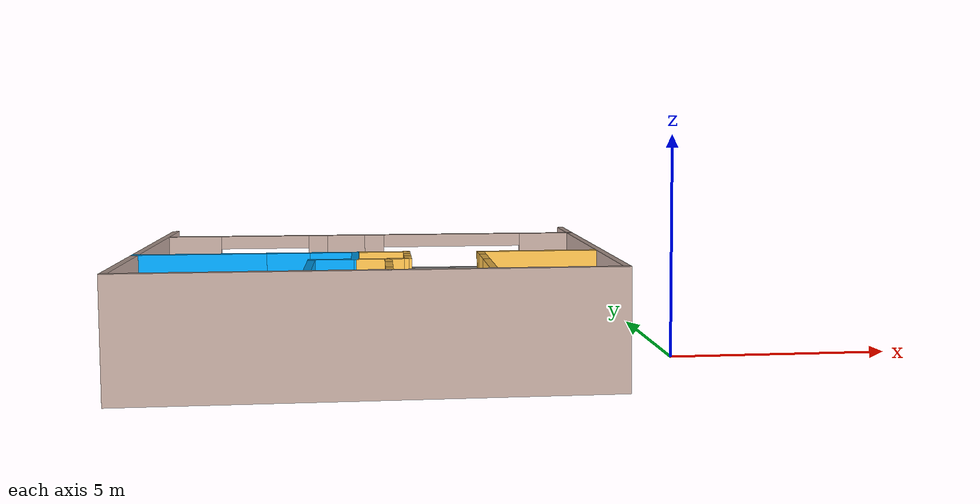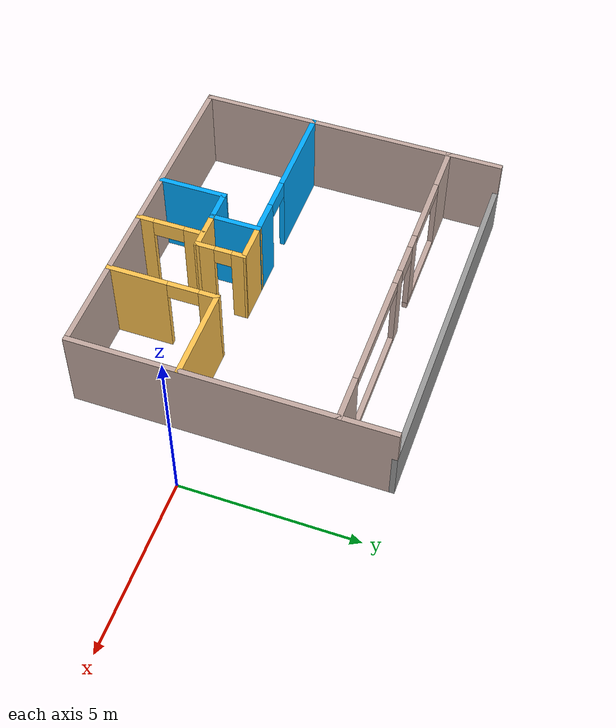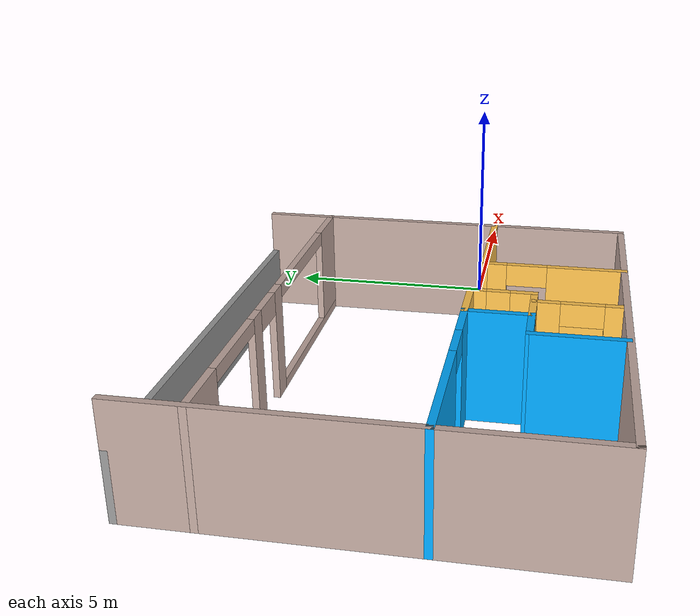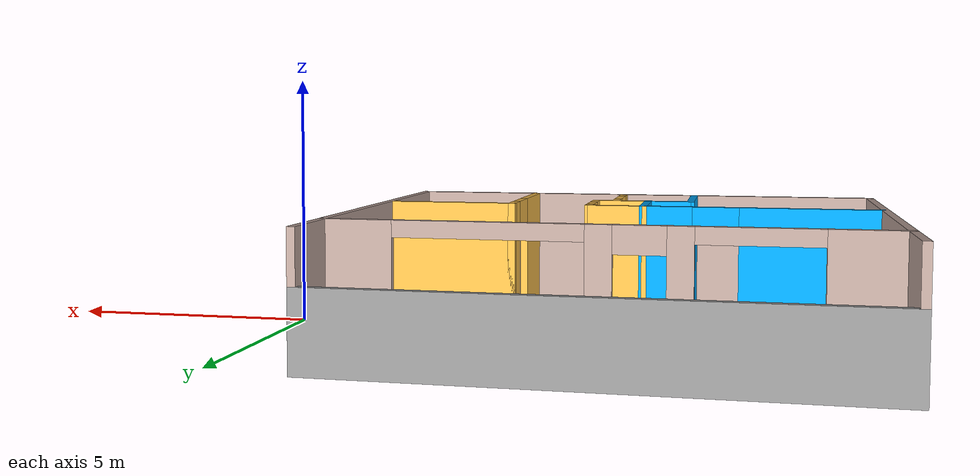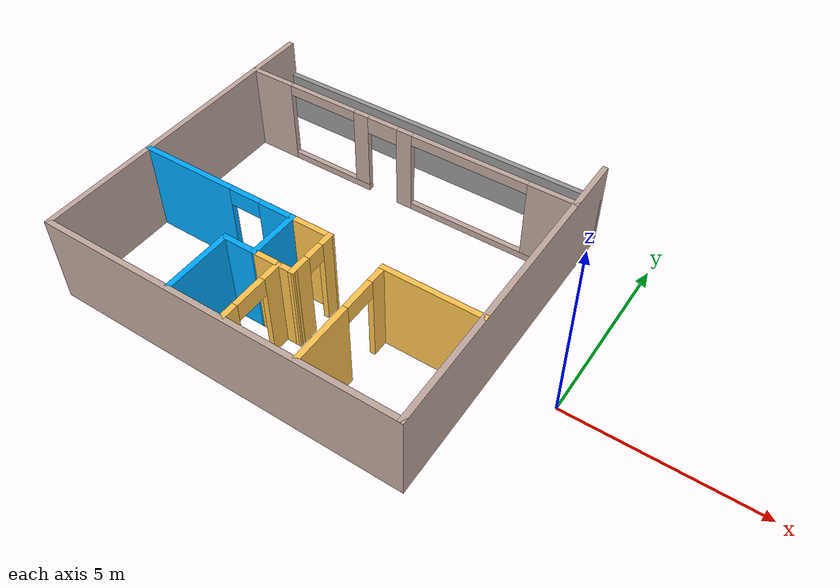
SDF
<?xml version='1.0'?>
<sdf version='1.6'>
  <model name='mybuilding'>
    <pose frame=''>-6.65297 0.817758 0 0 -0 0</pose>
    <link name='Wall_44'>
      <collision name='Wall_44_Collision'>
        <geometry>
          <box>
            <size>10 0.15 1.5</size>
          </box>
        </geometry>
        <pose frame=''>0 0 0.75 0 -0 0</pose>
      </collision>
      <visual name='Wall_44_Visual'>
        <pose frame=''>0 0 0.75 0 -0 0</pose>
        <geometry>
          <box>
            <size>10 0.15 1.5</size>
          </box>
        </geometry>
        <material>
          <script>
            <uri>file://media/materials/scripts/gazebo.material</uri>
            <name>Gazebo/Grey</name>
          </script>
          <ambient>1 1 1 1</ambient>
        </material>
        <meta>
          <layer>0</layer>
        </meta>
      </visual>
      <pose frame=''>-2.6e-05 4.42524 0 0 -0 0</pose>
    </link>
    <link name='Wall_45'>
      <collision name='Wall_45_Collision'>
        <geometry>
          <box>
            <size>9 0.15 2.5</size>
          </box>
        </geometry>
        <pose frame=''>0 0 1.25 0 -0 0</pose>
      </collision>
      <visual name='Wall_45_Visual'>
        <pose frame=''>0 0 1.25 0 -0 0</pose>
        <geometry>
          <box>
            <size>9 0.15 2.5</size>
          </box>
        </geometry>
        <material>
          <script>
            <uri>file://media/materials/scripts/gazebo.material</uri>
            <name>Gazebo/Grey</name>
          </script>
          <ambient>0.760784 0.662745 0.627451 1</ambient>
        </material>
        <meta>
          <layer>0</layer>
        </meta>
      </visual>
      <pose frame=''>4.925 0 0 0 0 -1.57079</pose>
    </link>
    <link name='Wall_47'>
      <collision name='Wall_47_Collision'>
        <geometry>
          <box>
            <size>10 0.15 2.5</size>
          </box>
        </geometry>
        <pose frame=''>0 0 1.25 0 -0 0</pose>
      </collision>
      <visual name='Wall_47_Visual'>
        <pose frame=''>0 0 1.25 0 -0 0</pose>
        <geometry>
          <box>
            <size>10 0.15 2.5</size>
          </box>
        </geometry>
        <material>
          <script>
            <uri>file://media/materials/scripts/gazebo.material</uri>
            <name>Gazebo/Grey</name>
          </script>
          <ambient>0.760784 0.662745 0.627451 1</ambient>
        </material>
        <meta>
          <layer>0</layer>
        </meta>
      </visual>
      <pose frame=''>2.5e-05 -4.42524 0 0 -0 3.14159</pose>
    </link>
    <link name='Wall_48'>
      <collision name='Wall_48_Collision'>
        <geometry>
          <box>
            <size>9 0.15 2.5</size>
          </box>
        </geometry>
        <pose frame=''>0 0 1.25 0 -0 0</pose>
      </collision>
      <visual name='Wall_48_Visual'>
        <pose frame=''>0 0 1.25 0 -0 0</pose>
        <geometry>
          <box>
            <size>9 0.15 2.5</size>
          </box>
        </geometry>
        <material>
          <script>
            <uri>file://media/materials/scripts/gazebo.material</uri>
            <name>Gazebo/Grey</name>
          </script>
          <ambient>0.760784 0.662745 0.627451 1</ambient>
        </material>
        <meta>
          <layer>0</layer>
        </meta>
      </visual>
      <pose frame=''>-4.925 0 0 0 -0 1.5708</pose>
    </link>
    <link name='Wall_50'>
      <pose frame=''>-2.6e-05 2.92324 0 0 -0 0</pose>
      <visual name='Wall_50_Visual_0'>
        <pose frame=''>-4.30924 0 1.25 0 -0 0</pose>
        <geometry>
          <box>
            <size>1.38152 0.15 2.5</size>
          </box>
        </geometry>
        <material>
          <script>
            <uri>file://media/materials/scripts/gazebo.material</uri>
            <name>Gazebo/Grey</name>
          </script>
          <ambient>0.760784 0.662745 0.627451 1</ambient>
        </material>
        <meta>
          <layer>0</layer>
        </meta>
      </visual>
      <collision name='Wall_50_Collision_0'>
        <geometry>
          <box>
            <size>1.38152 0.15 2.5</size>
          </box>
        </geometry>
        <pose frame=''>-4.30924 0 1.25 0 -0 0</pose>
      </collision>
      <visual name='Wall_50_Visual_1'>
        <pose frame=''>0.057238 0 1.25 0 -0 0</pose>
        <geometry>
          <box>
            <size>0.463911 0.15 2.5</size>
          </box>
        </geometry>
        <material>
          <script>
            <uri>file://media/materials/scripts/gazebo.material</uri>
            <name>Gazebo/Grey</name>
          </script>
          <ambient>0.760784 0.662745 0.627451 1</ambient>
        </material>
        <meta>
          <layer>0</layer>
        </meta>
      </visual>
      <collision name='Wall_50_Collision_1'>
        <geometry>
          <box>
            <size>0.463911 0.15 2.5</size>
          </box>
        </geometry>
        <pose frame=''>0.057238 0 1.25 0 -0 0</pose>
      </collision>
      <visual name='Wall_50_Visual_2'>
        <pose frame=''>-2.3466 0 0.1 0 -0 0</pose>
        <geometry>
          <box>
            <size>2.54376 0.15 0.2</size>
          </box>
        </geometry>
        <material>
          <script>
            <uri>file://media/materials/scripts/gazebo.material</uri>
            <name>Gazebo/Grey</name>
          </script>
          <ambient>0.760784 0.662745 0.627451 1</ambient>
        </material>
        <meta>
          <layer>0</layer>
        </meta>
      </visual>
      <collision name='Wall_50_Collision_2'>
        <geometry>
          <box>
            <size>2.54376 0.15 0.2</size>
          </box>
        </geometry>
        <pose frame=''>-2.3466 0 0.1 0 -0 0</pose>
      </collision>
      <visual name='Wall_50_Visual_3'>
        <pose frame=''>2.6446 0 0.1 0 -0 0</pose>
        <geometry>
          <box>
            <size>4.71081 0.15 0.2</size>
          </box>
        </geometry>
        <material>
          <script>
            <uri>file://media/materials/scripts/gazebo.material</uri>
            <name>Gazebo/Grey</name>
          </script>
          <ambient>0.760784 0.662745 0.627451 1</ambient>
        </material>
        <meta>
          <layer>0</layer>
        </meta>
      </visual>
      <collision name='Wall_50_Collision_3'>
        <geometry>
          <box>
            <size>4.71081 0.15 0.2</size>
          </box>
        </geometry>
        <pose frame=''>2.6446 0 0.1 0 -0 0</pose>
      </collision>
      <visual name='Wall_50_Visual_4'>
        <pose frame=''>-1.3006 0 1.35 0 -0 0</pose>
        <geometry>
          <box>
            <size>0.451764 0.15 2.3</size>
          </box>
        </geometry>
        <material>
          <script>
            <uri>file://media/materials/scripts/gazebo.material</uri>
            <name>Gazebo/Grey</name>
          </script>
          <ambient>0.760784 0.662745 0.627451 1</ambient>
        </material>
        <meta>
          <layer>0</layer>
        </meta>
      </visual>
      <collision name='Wall_50_Collision_4'>
        <geometry>
          <box>
            <size>0.451764 0.15 2.3</size>
          </box>
        </geometry>
        <pose frame=''>-1.3006 0 1.35 0 -0 0</pose>
      </collision>
      <visual name='Wall_50_Visual_5'>
        <pose frame=''>-1.3006 0 1.35 0 -0 0</pose>
        <geometry>
          <box>
            <size>0.451764 0.15 2.3</size>
          </box>
        </geometry>
        <material>
          <script>
            <uri>file://media/materials/scripts/gazebo.material</uri>
            <name>Gazebo/Grey</name>
          </script>
          <ambient>0.760784 0.662745 0.627451 1</ambient>
        </material>
        <meta>
          <layer>0</layer>
        </meta>
      </visual>
      <collision name='Wall_50_Collision_5'>
        <geometry>
          <box>
            <size>0.451764 0.15 2.3</size>
          </box>
        </geometry>
        <pose frame=''>-1.3006 0 1.35 0 -0 0</pose>
      </collision>
      <visual name='Wall_50_Visual_6'>
        <pose frame=''>4.3216 0 1.35 0 -0 0</pose>
        <geometry>
          <box>
            <size>1.35681 0.15 2.3</size>
          </box>
        </geometry>
        <material>
          <script>
            <uri>file://media/materials/scripts/gazebo.material</uri>
            <name>Gazebo/Grey</name>
          </script>
          <ambient>0.760784 0.662745 0.627451 1</ambient>
        </material>
        <meta>
          <layer>0</layer>
        </meta>
      </visual>
      <collision name='Wall_50_Collision_6'>
        <geometry>
          <box>
            <size>1.35681 0.15 2.3</size>
          </box>
        </geometry>
        <pose frame=''>4.3216 0 1.35 0 -0 0</pose>
      </collision>
      <visual name='Wall_50_Visual_7'>
        <pose frame=''>-0.624718 0 2.25 0 -0 0</pose>
        <geometry>
          <box>
            <size>0.9 0.15 0.5</size>
          </box>
        </geometry>
        <material>
          <script>
            <uri>file://media/materials/scripts/gazebo.material</uri>
            <name>Gazebo/Grey</name>
          </script>
          <ambient>0.760784 0.662745 0.627451 1</ambient>
        </material>
        <meta>
          <layer>0</layer>
        </meta>
      </visual>
      <collision name='Wall_50_Collision_7'>
        <geometry>
          <box>
            <size>0.9 0.15 0.5</size>
          </box>
        </geometry>
        <pose frame=''>-0.624718 0 2.25 0 -0 0</pose>
      </collision>
      <visual name='Wall_50_Visual_8'>
        <pose frame=''>-0.624718 0 2.25 0 -0 0</pose>
        <geometry>
          <box>
            <size>0.9 0.15 0.5</size>
          </box>
        </geometry>
        <material>
          <script>
            <uri>file://media/materials/scripts/gazebo.material</uri>
            <name>Gazebo/Grey</name>
          </script>
          <ambient>0.760784 0.662745 0.627451 1</ambient>
        </material>
        <meta>
          <layer>0</layer>
        </meta>
      </visual>
      <collision name='Wall_50_Collision_8'>
        <geometry>
          <box>
            <size>0.9 0.15 0.5</size>
          </box>
        </geometry>
        <pose frame=''>-0.624718 0 2.25 0 -0 0</pose>
      </collision>
      <visual name='Wall_50_Visual_9'>
        <pose frame=''>-2.57248 0 2.35 0 -0 0</pose>
        <geometry>
          <box>
            <size>2.09199 0.15 0.3</size>
          </box>
        </geometry>
        <material>
          <script>
            <uri>file://media/materials/scripts/gazebo.material</uri>
            <name>Gazebo/Grey</name>
          </script>
          <ambient>0.760784 0.662745 0.627451 1</ambient>
        </material>
        <meta>
          <layer>0</layer>
        </meta>
      </visual>
      <collision name='Wall_50_Collision_9'>
        <geometry>
          <box>
            <size>2.09199 0.15 0.3</size>
          </box>
        </geometry>
        <pose frame=''>-2.57248 0 2.35 0 -0 0</pose>
      </collision>
      <visual name='Wall_50_Visual_10'>
        <pose frame=''>1.96619 0 2.35 0 -0 0</pose>
        <geometry>
          <box>
            <size>3.354 0.15 0.3</size>
          </box>
        </geometry>
        <material>
          <script>
            <uri>file://media/materials/scripts/gazebo.material</uri>
            <name>Gazebo/Grey</name>
          </script>
          <ambient>0.760784 0.662745 0.627451 1</ambient>
        </material>
        <meta>
          <layer>0</layer>
        </meta>
      </visual>
      <collision name='Wall_50_Collision_10'>
        <geometry>
          <box>
            <size>3.354 0.15 0.3</size>
          </box>
        </geometry>
        <pose frame=''>1.96619 0 2.35 0 -0 0</pose>
      </collision>
    </link>
    <link name='Wall_55'>
      <collision name='Wall_55_Collision'>
        <geometry>
          <box>
            <size>2 0.15 2.5</size>
          </box>
        </geometry>
        <pose frame=''>0 0 1.25 0 -0 0</pose>
      </collision>
      <visual name='Wall_55_Visual'>
        <pose frame=''>0 0 1.25 0 -0 0</pose>
        <geometry>
          <box>
            <size>2 0.15 2.5</size>
          </box>
        </geometry>
        <material>
          <script>
            <uri>file://media/materials/scripts/gazebo.material</uri>
            <name>Gazebo/Grey</name>
          </script>
          <ambient>0 0.666667 1 1</ambient>
        </material>
        <meta>
          <layer>0</layer>
        </meta>
      </visual>
      <pose frame=''>-1.21288 -3.45603 0 0 0 -1.5708</pose>
    </link>
    <link name='Wall_57'>
      <collision name='Wall_57_Collision'>
        <geometry>
          <box>
            <size>1.01585 0.15 2.5</size>
          </box>
        </geometry>
        <pose frame=''>0 0 1.25 0 -0 0</pose>
      </collision>
      <visual name='Wall_57_Visual'>
        <pose frame=''>0 0 1.25 0 -0 0</pose>
        <geometry>
          <box>
            <size>1.01585 0.15 2.5</size>
          </box>
        </geometry>
        <material>
          <script>
            <uri>file://media/materials/scripts/gazebo.material</uri>
            <name>Gazebo/Grey</name>
          </script>
          <ambient>0 0.666667 1 1</ambient>
        </material>
        <meta>
          <layer>0</layer>
        </meta>
      </visual>
      <pose frame=''>-0.779952 -2.53089 0 0 -0 0.000313</pose>
    </link>
    <link name='Wall_58'>
      <collision name='Wall_58_Collision'>
        <geometry>
          <box>
            <size>1.5 0.15 2.5</size>
          </box>
        </geometry>
        <pose frame=''>0 0 1.25 0 -0 0</pose>
      </collision>
      <visual name='Wall_58_Visual'>
        <pose frame=''>0 0 1.25 0 -0 0</pose>
        <geometry>
          <box>
            <size>1.5 0.15 2.5</size>
          </box>
        </geometry>
        <material>
          <script>
            <uri>file://media/materials/scripts/gazebo.material</uri>
            <name>Gazebo/Grey</name>
          </script>
          <ambient>0 0.666667 1 1</ambient>
        </material>
        <meta>
          <layer>0</layer>
        </meta>
      </visual>
      <pose frame=''>-0.347026 -1.85576 0 0 -0 1.5708</pose>
    </link>
    <link name='Wall_59'>
      <pose frame=''>-2.63603 -1.18076 0 0 -0 3.14159</pose>
      <visual name='Wall_59_Visual_0'>
        <pose frame=''>-1.84719 0 1.25 0 -0 0</pose>
        <geometry>
          <box>
            <size>1.03362 0.15 2.5</size>
          </box>
        </geometry>
        <material>
          <script>
            <uri>file://media/materials/scripts/gazebo.material</uri>
            <name>Gazebo/Grey</name>
          </script>
          <ambient>0 0.666667 1 1</ambient>
        </material>
        <meta>
          <layer>0</layer>
        </meta>
      </visual>
      <collision name='Wall_59_Collision_0'>
        <geometry>
          <box>
            <size>1.03362 0.15 2.5</size>
          </box>
        </geometry>
        <pose frame=''>-1.84719 0 1.25 0 -0 0</pose>
      </collision>
      <visual name='Wall_59_Visual_1'>
        <pose frame=''>0.966808 0 1.25 0 -0 0</pose>
        <geometry>
          <box>
            <size>2.79438 0.15 2.5</size>
          </box>
        </geometry>
        <material>
          <script>
            <uri>file://media/materials/scripts/gazebo.material</uri>
            <name>Gazebo/Grey</name>
          </script>
          <ambient>0 0.666667 1 1</ambient>
        </material>
        <meta>
          <layer>0</layer>
        </meta>
      </visual>
      <collision name='Wall_59_Collision_1'>
        <geometry>
          <box>
            <size>2.79438 0.15 2.5</size>
          </box>
        </geometry>
        <pose frame=''>0.966808 0 1.25 0 -0 0</pose>
      </collision>
      <visual name='Wall_59_Visual_2'>
        <pose frame=''>-0.880384 0 2.25 0 -0 0</pose>
        <geometry>
          <box>
            <size>0.9 0.15 0.5</size>
          </box>
        </geometry>
        <material>
          <script>
            <uri>file://media/materials/scripts/gazebo.material</uri>
            <name>Gazebo/Grey</name>
          </script>
          <ambient>0 0.666667 1 1</ambient>
        </material>
        <meta>
          <layer>0</layer>
        </meta>
      </visual>
      <collision name='Wall_59_Collision_2'>
        <geometry>
          <box>
            <size>0.9 0.15 0.5</size>
          </box>
        </geometry>
        <pose frame=''>-0.880384 0 2.25 0 -0 0</pose>
      </collision>
    </link>
    <link name='Wall_61'>
      <collision name='Wall_61_Collision'>
        <geometry>
          <box>
            <size>1.23415 0.15 2.5</size>
          </box>
        </geometry>
        <pose frame=''>0 0 1.25 0 -0 0</pose>
      </collision>
      <visual name='Wall_61_Visual'>
        <pose frame=''>0 0 1.25 0 -0 0</pose>
        <geometry>
          <box>
            <size>1.23415 0.15 2.5</size>
          </box>
        </geometry>
        <material>
          <script>
            <uri>file://media/materials/scripts/gazebo.material</uri>
            <name>Gazebo/Grey</name>
          </script>
          <ambient>1 0.764706 0.305882 1</ambient>
        </material>
        <meta>
          <layer>0</layer>
        </meta>
      </visual>
      <pose frame=''>0.195047 -1.18089 0 0 0 -0.00025</pose>
    </link>
    <link name='Wall_62'>
      <pose frame=''>0.737121 -1.85603 0 0 0 -1.5708</pose>
      <visual name='Wall_62_Visual_0'>
        <pose frame=''>-0.541813 0 1.25 0 -0 0</pose>
        <geometry>
          <box>
            <size>0.416374 0.15 2.5</size>
          </box>
        </geometry>
        <material>
          <script>
            <uri>file://media/materials/scripts/gazebo.material</uri>
            <name>Gazebo/Grey</name>
          </script>
          <ambient>1 0.764706 0.305882 1</ambient>
        </material>
        <meta>
          <layer>0</layer>
        </meta>
      </visual>
      <collision name='Wall_62_Collision_0'>
        <geometry>
          <box>
            <size>0.416374 0.15 2.5</size>
          </box>
        </geometry>
        <pose frame=''>-0.541813 0 1.25 0 -0 0</pose>
      </collision>
      <visual name='Wall_62_Visual_1'>
        <pose frame=''>0.458187 0 1.25 0 -0 0</pose>
        <geometry>
          <box>
            <size>0.583626 0.15 2.5</size>
          </box>
        </geometry>
        <material>
          <script>
            <uri>file://media/materials/scripts/gazebo.material</uri>
            <name>Gazebo/Grey</name>
          </script>
          <ambient>1 0.764706 0.305882 1</ambient>
        </material>
        <meta>
          <layer>0</layer>
        </meta>
      </visual>
      <collision name='Wall_62_Collision_1'>
        <geometry>
          <box>
            <size>0.583626 0.15 2.5</size>
          </box>
        </geometry>
        <pose frame=''>0.458187 0 1.25 0 -0 0</pose>
      </collision>
      <visual name='Wall_62_Visual_2'>
        <pose frame=''>-0.083626 0 2.25 0 -0 0</pose>
        <geometry>
          <box>
            <size>0.5 0.15 0.5</size>
          </box>
        </geometry>
        <material>
          <script>
            <uri>file://media/materials/scripts/gazebo.material</uri>
            <name>Gazebo/Grey</name>
          </script>
          <ambient>1 0.764706 0.305882 1</ambient>
        </material>
        <meta>
          <layer>0</layer>
        </meta>
      </visual>
      <collision name='Wall_62_Collision_2'>
        <geometry>
          <box>
            <size>0.5 0.15 0.5</size>
          </box>
        </geometry>
        <pose frame=''>-0.083626 0 2.25 0 -0 0</pose>
      </collision>
    </link>
    <link name='Wall_63'>
      <collision name='Wall_63_Collision'>
        <geometry>
          <box>
            <size>1.23415 0.15 2.5</size>
          </box>
        </geometry>
        <pose frame=''>0 0 1.25 0 -0 0</pose>
      </collision>
      <visual name='Wall_63_Visual'>
        <pose frame=''>0 0 1.25 0 -0 0</pose>
        <geometry>
          <box>
            <size>1.23415 0.15 2.5</size>
          </box>
        </geometry>
        <material>
          <script>
            <uri>file://media/materials/scripts/gazebo.material</uri>
            <name>Gazebo/Grey</name>
          </script>
          <ambient>1 0.764706 0.305882 1</ambient>
        </material>
        <meta>
          <layer>0</layer>
        </meta>
      </visual>
      <pose frame=''>0.195047 -2.53089 0 0 -0 3.14134</pose>
    </link>
    <link name='Wall_65'>
      <pose frame=''>0.335591 -3.48812 0 0 0 -1.5708</pose>
      <visual name='Wall_65_Visual_0'>
        <pose frame=''>-0.705051 0 1.25 0 -0 0</pose>
        <geometry>
          <box>
            <size>0.589897 0.15 2.5</size>
          </box>
        </geometry>
        <material>
          <script>
            <uri>file://media/materials/scripts/gazebo.material</uri>
            <name>Gazebo/Grey</name>
          </script>
          <ambient>1 0.764706 0.305882 1</ambient>
        </material>
        <meta>
          <layer>0</layer>
        </meta>
      </visual>
      <collision name='Wall_65_Collision_0'>
        <geometry>
          <box>
            <size>0.589897 0.15 2.5</size>
          </box>
        </geometry>
        <pose frame=''>-0.705051 0 1.25 0 -0 0</pose>
      </collision>
      <visual name='Wall_65_Visual_1'>
        <pose frame=''>0.744949 0 1.25 0 -0 0</pose>
        <geometry>
          <box>
            <size>0.510103 0.15 2.5</size>
          </box>
        </geometry>
        <material>
          <script>
            <uri>file://media/materials/scripts/gazebo.material</uri>
            <name>Gazebo/Grey</name>
          </script>
          <ambient>1 0.764706 0.305882 1</ambient>
        </material>
        <meta>
          <layer>0</layer>
        </meta>
      </visual>
      <collision name='Wall_65_Collision_1'>
        <geometry>
          <box>
            <size>0.510103 0.15 2.5</size>
          </box>
        </geometry>
        <pose frame=''>0.744949 0 1.25 0 -0 0</pose>
      </collision>
      <visual name='Wall_65_Visual_2'>
        <pose frame=''>0.039897 0 2.25 0 -0 0</pose>
        <geometry>
          <box>
            <size>0.9 0.15 0.5</size>
          </box>
        </geometry>
        <material>
          <script>
            <uri>file://media/materials/scripts/gazebo.material</uri>
            <name>Gazebo/Grey</name>
          </script>
          <ambient>1 0.764706 0.305882 1</ambient>
        </material>
        <meta>
          <layer>0</layer>
        </meta>
      </visual>
      <collision name='Wall_65_Collision_2'>
        <geometry>
          <box>
            <size>0.9 0.15 0.5</size>
          </box>
        </geometry>
        <pose frame=''>0.039897 0 2.25 0 -0 0</pose>
      </collision>
    </link>
    <link name='Wall_70'>
      <collision name='Wall_70_Collision'>
        <geometry>
          <box>
            <size>2.75 0.15 2.5</size>
          </box>
        </geometry>
        <pose frame=''>0 0 1.25 0 -0 0</pose>
      </collision>
      <visual name='Wall_70_Visual'>
        <pose frame=''>0 0 1.25 0 -0 0</pose>
        <geometry>
          <box>
            <size>2.75 0.15 2.5</size>
          </box>
        </geometry>
        <material>
          <script>
            <uri>file://media/materials/scripts/gazebo.material</uri>
            <name>Gazebo/Grey</name>
          </script>
          <ambient>1 0.764706 0.305882 1</ambient>
        </material>
        <meta>
          <layer>0</layer>
        </meta>
      </visual>
      <pose frame=''>3.62344 -1.3202 0 0 -0 3.14159</pose>
    </link>
    <link name='Wall_71'>
      <pose frame=''>2.32344 -2.8702 0 0 0 -1.5708</pose>
      <visual name='Wall_71_Visual_0'>
        <pose frame=''>-1.3337 0 1.25 0 -0 0</pose>
        <geometry>
          <box>
            <size>0.582607 0.15 2.5</size>
          </box>
        </geometry>
        <material>
          <script>
            <uri>file://media/materials/scripts/gazebo.material</uri>
            <name>Gazebo/Grey</name>
          </script>
          <ambient>1 0.764706 0.305882 1</ambient>
        </material>
        <meta>
          <layer>0</layer>
        </meta>
      </visual>
      <collision name='Wall_71_Collision_0'>
        <geometry>
          <box>
            <size>0.582607 0.15 2.5</size>
          </box>
        </geometry>
        <pose frame=''>-1.3337 0 1.25 0 -0 0</pose>
      </collision>
      <visual name='Wall_71_Visual_1'>
        <pose frame=''>0.741304 0 1.25 0 -0 0</pose>
        <geometry>
          <box>
            <size>1.76739 0.15 2.5</size>
          </box>
        </geometry>
        <material>
          <script>
            <uri>file://media/materials/scripts/gazebo.material</uri>
            <name>Gazebo/Grey</name>
          </script>
          <ambient>1 0.764706 0.305882 1</ambient>
        </material>
        <meta>
          <layer>0</layer>
        </meta>
      </visual>
      <collision name='Wall_71_Collision_1'>
        <geometry>
          <box>
            <size>1.76739 0.15 2.5</size>
          </box>
        </geometry>
        <pose frame=''>0.741304 0 1.25 0 -0 0</pose>
      </collision>
      <visual name='Wall_71_Visual_2'>
        <pose frame=''>-0.592393 0 2.25 0 -0 0</pose>
        <geometry>
          <box>
            <size>0.9 0.15 0.5</size>
          </box>
        </geometry>
        <material>
          <script>
            <uri>file://media/materials/scripts/gazebo.material</uri>
            <name>Gazebo/Grey</name>
          </script>
          <ambient>1 0.764706 0.305882 1</ambient>
        </material>
        <meta>
          <layer>0</layer>
        </meta>
      </visual>
      <collision name='Wall_71_Collision_2'>
        <geometry>
          <box>
            <size>0.9 0.15 0.5</size>
          </box>
        </geometry>
        <pose frame=''>-0.592393 0 2.25 0 -0 0</pose>
      </collision>
    </link>
    <static>1</static>
  </model>
</sdf>
